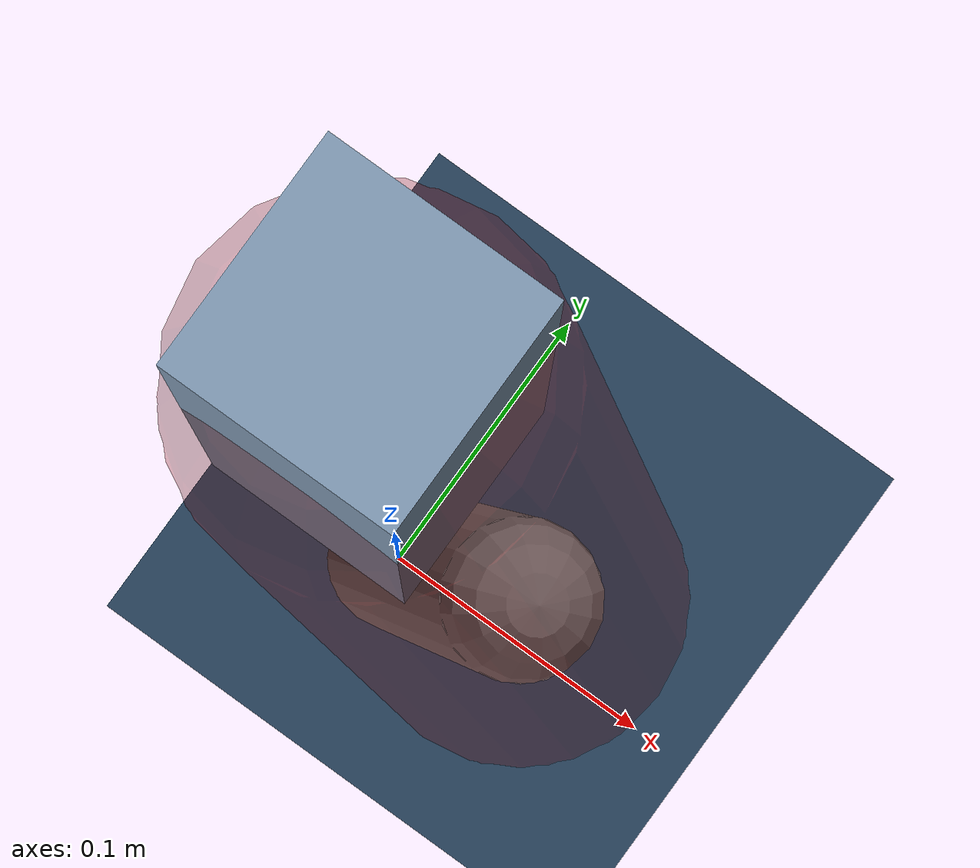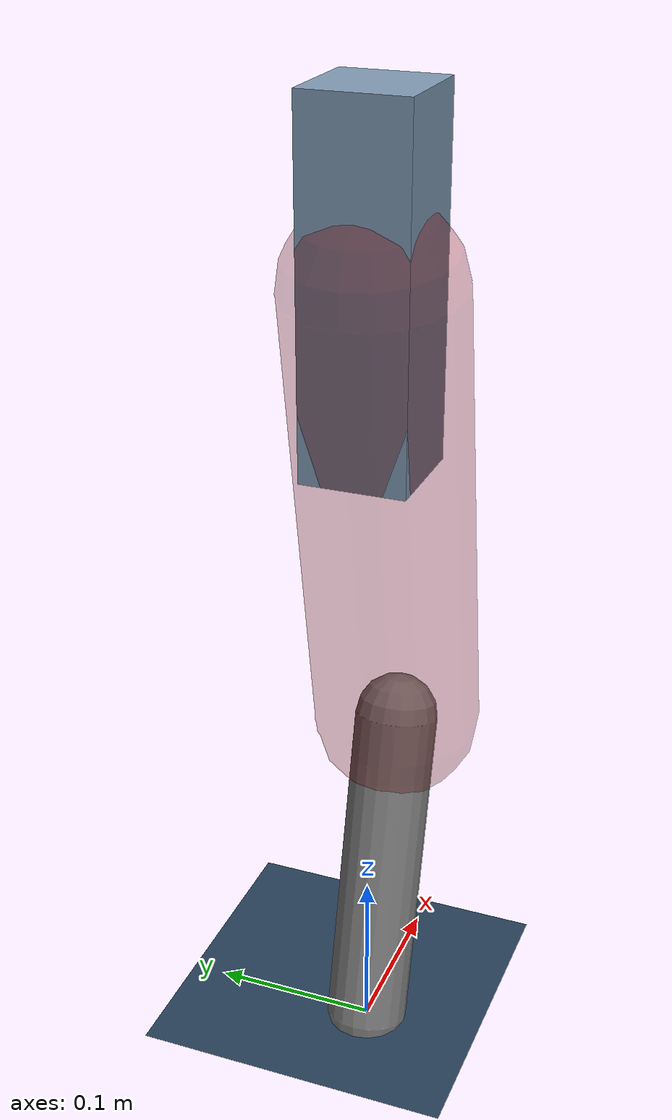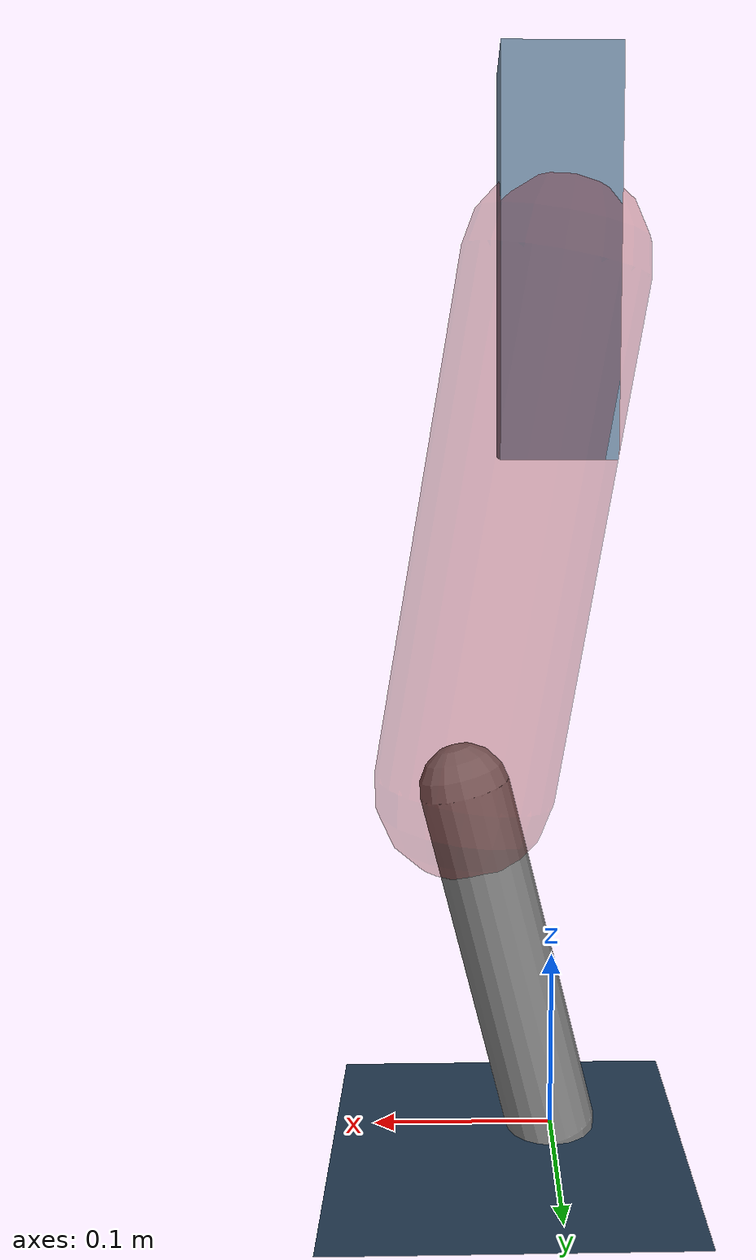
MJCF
<mujoco model="Hopper2D">
	<compiler inertiafromgeom="true" angle="radian" />
	<option timestep="0.001" integrator="implicit" cone="elliptic" solver="Newton" tolerance="1e-10" />

	<default>
		<geom contype="1" conaffinity="1" condim="3" friction="2 0.005 0.0001" solref="0.005 1" />
		<joint limited="true" damping="0.1" />
	</default>

	<asset>
		<texture name="skybox" type="skybox" builtin="gradient" rgb1=".4 .6 .8" rgb2="0 0 0" width="800" height="800" />
		<texture name="grid" type="2d" builtin="checker" rgb1=".1 .2 .3" rgb2=".2 .3 .4" width="300" height="300" mark="edge" markrgb=".2 .3 .4" />
		<material name="ground" texture="grid" texrepeat="1 1" texuniform="true" reflectance="0.1" />
		<material name="leg" rgba="0.5 0.6 0.7 1" />
	</asset>

	<worldbody>

		<geom name="floor" type="plane" size="5 5 0.25" material="ground" />

		<light directional="false" diffuse="0.8 0.8 0.8" specular="0.3 0.3 0.3" pos="0 0 2" dir="0 0 -1" />
		<light mode="targetbodycom" target="base" directional="false" diffuse="0.8 0.8 0.8" specular="0.3 0.3 0.3" pos="0 0 2" dir="0 0 -1" />

		<camera name="fixed" pos="0 -2 1" xyaxes="1 0 0 0 0 1" />
		<camera name="tracking" mode="trackcom" pos="0 -3 1" />

		<body name="root" pos="0 0 0.47596438141921626">
			<joint name="slide_x" type="slide" axis="1 0 0" range="-100 100" />
			<joint name="slide_z" type="slide" axis="0 0 1" range="0 10" />

			<body name="base" pos="0 0 0">
				<geom name="torso" type="box" size="0.03 0.03 0.1" mass="2.567" material="leg" />

				<body name="link1" pos="0 0 0" euler="0 1.3991731938868337 0">
					<joint type="hinge" axis="0 -1 0" pos="0 0 0" name="hinge1" limited="true" range="-3.14 3.14" stiffness="0" damping="0.1" />
					<geom name="thigh" type="capsule" fromto="0 0 0 0.2830458002750933 0 0" size="0.05" rgba="0.5 0 0 0.3" mass="0.943223660742752" />

					<body name="link2" pos="0.2830458002750933 0 0" euler="0 0.41215491470680726 0">
						<joint type="hinge" axis="0 -1 0" pos="0 0 0" name="hinge2" limited="true" range="-3.14 3.14" stiffness="0" damping="0.1" />
						<geom name="shank" type="capsule" fromto="0 0 0 0.202918581144123 0 0" size="0.025" mass="0.40333486491529835" />

					</body>
				</body>
			</body>
		</body>
	</worldbody>

	<actuator>
		<motor name="torque1" joint="hinge1" ctrlrange="-80.61111901804703 80.61111901804703" ctrllimited="true" gear="1" />
		<motor name="torque2" joint="hinge2" ctrlrange="-99.24302036688809 99.24302036688809" ctrllimited="true" gear="1" />
	</actuator>
</mujoco>
